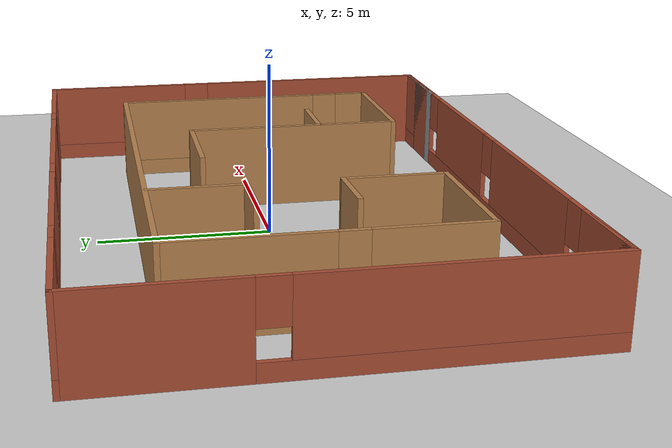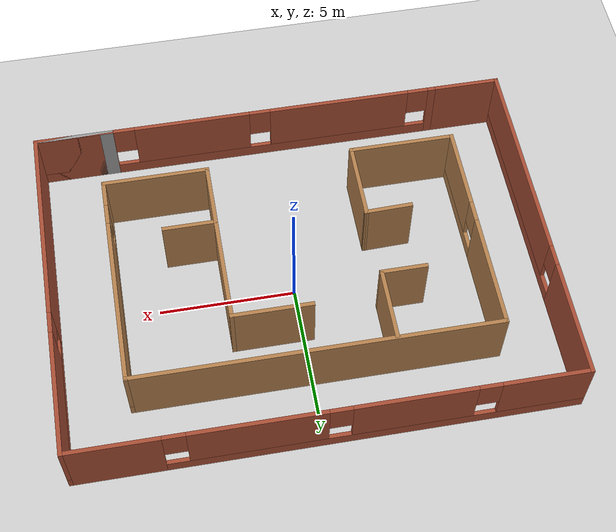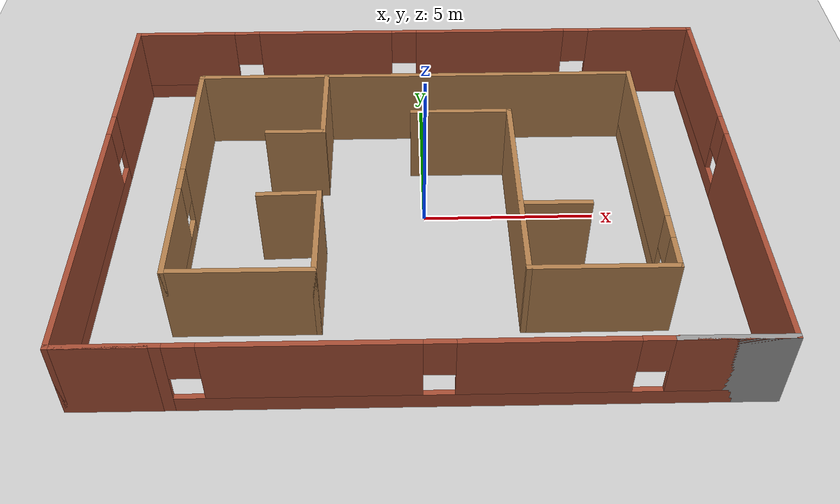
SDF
<sdf version="1.6">
 <world name="default">
  <light name="sun" type="directional">
   <pose>0 0 10 0 -0 0</pose>
   <diffuse>0.8 0.8 0.8 1</diffuse>
   <specular>0.1 0.1 0.1 1</specular>
   <attenuation>
    <range>1000</range>
    <constant>0.9</constant>
    <linear>0.01</linear>
    <quadratic>0.001</quadratic>
   </attenuation>
   <direction>-0.5 0.5 -1</direction>
  </light>
  <model name="ground_plane">
   <static>1</static>
   <link name="link">
    <collision name="collision">
     <geometry><plane><normal>0 0 1</normal><size>100 100</size></plane></geometry>
     <surface><friction><ode><mu>100</mu><mu2>50</mu2></ode></friction></surface>
    </collision>
    <visual name="visual">
     <cast_shadows>0</cast_shadows>
     <geometry><plane><normal>0 0 1</normal><size>100 100</size></plane></geometry>
     <material>
      <script><uri>file://media/materials/scripts/gazebo.material</uri><name>Gazebo/Grey</name></script>
     </material>
    </visual>
   </link>
  </model>
  <gravity>0 0 -9.8</gravity>
  <magnetic_field>6e-06 2.3e-05 -4.2e-05</magnetic_field>
  <atmosphere type="adiabatic"/>
  <physics name="default_physics" default="0" type="ode">
   <max_step_size>0.001</max_step_size>
   <real_time_factor>1</real_time_factor>
   <real_time_update_rate>1000</real_time_update_rate>
  </physics>
  <scene><ambient>0.4 0.4 0.4 1</ambient><background>0.7 0.7 0.7 1</background><shadows>1</shadows></scene>
  <spherical_coordinates>
   <surface_model>EARTH_WGS84</surface_model>
   <latitude_deg>0</latitude_deg>
   <longitude_deg>0</longitude_deg>
   <elevation>0</elevation>
   <heading_deg>0</heading_deg>
  </spherical_coordinates>
  <model name="testworld1">
   <pose>-0.193786 -0.295469 0 0 -0 0</pose>
   <link name="Wall_23">
    <collision name="Wall_23_Collision">
     <geometry><box><size>3 0.15 2.5</size></box></geometry>
     <pose>0 0 1.25 0 -0 0</pose>
    </collision>
    <visual name="Wall_23_Visual">
     <pose>0 0 1.25 0 -0 0</pose>
     <geometry><box><size>3 0.15 2.5</size></box></geometry>
     <material>
      <script><uri>file://media/materials/scripts/gazebo.material</uri><name>Gazebo/Grey</name></script>
      <ambient>1 1 1 1</ambient>
     </material>
    </visual>
    <pose>7.5 -6.425 0 0 -0 3.14159</pose>
   </link>
   <link name="Wall_27">
    <collision name="Wall_27_Collision">
     <geometry><box><size>2.5 0.15 2.5</size></box></geometry>
     <pose>0 0 1.25 0 -0 0</pose>
    </collision>
    <visual name="Wall_27_Visual">
     <pose>0 0 1.25 0 -0 0</pose>
     <geometry><box><size>2.5 0.15 2.5</size></box></geometry>
     <material>
      <script><uri>file://media/materials/scripts/gazebo.material</uri><name>Gazebo/Bricks</name></script>
      <ambient>1 1 1 1</ambient>
     </material>
    </visual>
    <pose>-7.75 -6.425 0 0 -0 0</pose>
   </link>
   <link name="Wall_30">
    <collision name="Wall_30_Collision">
     <geometry><box><size>2.5 0.15 2.5</size></box></geometry>
     <pose>0 0 1.25 0 -0 0</pose>
    </collision>
    <visual name="Wall_30_Visual">
     <pose>0 0 1.25 0 -0 0</pose>
     <geometry><box><size>2.5 0.15 2.5</size></box></geometry>
     <material>
      <script><uri>file://media/materials/scripts/gazebo.material</uri><name>Gazebo/Bricks</name></script>
      <ambient>1 1 1 1</ambient>
     </material>
    </visual>
    <pose>7.75 -6.425 0 0 -0 3.14159</pose>
   </link>
   <link name="Wall_4">
    <pose>0 -6.425 0 0 -0 0</pose>
    <visual name="Wall_4_Visual_0">
     <pose>-7.60123 0 1.25 0 -0 0</pose>
     <geometry><box><size>2.79754 0.15 2.5</size></box></geometry>
     <material>
      <script><uri>file://media/materials/scripts/gazebo.material</uri><name>Gazebo/Bricks</name></script>
      <ambient>1 1 1 1</ambient>
     </material>
    </visual>
    <collision name="Wall_4_Collision_0">
     <geometry><box><size>2.79754 0.15 2.5</size></box></geometry>
     <pose>-7.60123 0 1.25 0 -0 0</pose>
    </collision>
    <visual name="Wall_4_Visual_1">
     <pose>1.39877 0 0.25 0 -0 0</pose>
     <geometry><box><size>15.2025 0.15 0.5</size></box></geometry>
     <material>
      <script><uri>file://media/materials/scripts/gazebo.material</uri><name>Gazebo/Bricks</name></script>
      <ambient>1 1 1 1</ambient>
     </material>
    </visual>
    <collision name="Wall_4_Collision_1">
     <geometry><box><size>15.2025 0.15 0.5</size></box></geometry>
     <pose>1.39877 0 0.25 0 -0 0</pose>
    </collision>
    <visual name="Wall_4_Visual_2">
     <pose>-2.70673 0 1.5 0 -0 0</pose>
     <geometry><box><size>5.39146 0.15 2</size></box></geometry>
     <material>
      <script><uri>file://media/materials/scripts/gazebo.material</uri><name>Gazebo/Bricks</name></script>
      <ambient>1 1 1 1</ambient>
     </material>
    </visual>
    <collision name="Wall_4_Collision_2">
     <geometry><box><size>5.39146 0.15 2</size></box></geometry>
     <pose>-2.70673 0 1.5 0 -0 0</pose>
    </collision>
    <visual name="Wall_4_Visual_3">
     <pose>2.99223 0 1.5 0 -0 0</pose>
     <geometry><box><size>4.40646 0.15 2</size></box></geometry>
     <material>
      <script><uri>file://media/materials/scripts/gazebo.material</uri><name>Gazebo/Bricks</name></script>
      <ambient>1 1 1 1</ambient>
     </material>
    </visual>
    <collision name="Wall_4_Collision_3">
     <geometry><box><size>4.40646 0.15 2</size></box></geometry>
     <pose>2.99223 0 1.5 0 -0 0</pose>
    </collision>
    <visual name="Wall_4_Visual_4">
     <pose>7.49773 0 1.5 0 -0 0</pose>
     <geometry><box><size>3.00454 0.15 2</size></box></geometry>
     <material>
      <script><uri>file://media/materials/scripts/gazebo.material</uri><name>Gazebo/Bricks</name></script>
      <ambient>1 1 1 1</ambient>
     </material>
    </visual>
    <collision name="Wall_4_Collision_4">
     <geometry><box><size>3.00454 0.15 2</size></box></geometry>
     <pose>7.49773 0 1.5 0 -0 0</pose>
    </collision>
    <visual name="Wall_4_Visual_5">
     <pose>-5.80246 0 1.9 0 -0 0</pose>
     <geometry><box><size>0.8 0.15 1.2</size></box></geometry>
     <material>
      <script><uri>file://media/materials/scripts/gazebo.material</uri><name>Gazebo/Bricks</name></script>
      <ambient>1 1 1 1</ambient>
     </material>
    </visual>
    <collision name="Wall_4_Collision_5">
     <geometry><box><size>0.8 0.15 1.2</size></box></geometry>
     <pose>-5.80246 0 1.9 0 -0 0</pose>
    </collision>
    <visual name="Wall_4_Visual_6">
     <pose>0.389002 0 1.9 0 -0 0</pose>
     <geometry><box><size>0.8 0.15 1.2</size></box></geometry>
     <material>
      <script><uri>file://media/materials/scripts/gazebo.material</uri><name>Gazebo/Bricks</name></script>
      <ambient>1 1 1 1</ambient>
     </material>
    </visual>
    <collision name="Wall_4_Collision_6">
     <geometry><box><size>0.8 0.15 1.2</size></box></geometry>
     <pose>0.389002 0 1.9 0 -0 0</pose>
    </collision>
    <visual name="Wall_4_Visual_7">
     <pose>5.59546 0 1.9 0 -0 0</pose>
     <geometry><box><size>0.8 0.15 1.2</size></box></geometry>
     <material>
      <script><uri>file://media/materials/scripts/gazebo.material</uri><name>Gazebo/Bricks</name></script>
      <ambient>1 1 1 1</ambient>
     </material>
    </visual>
    <collision name="Wall_4_Collision_7">
     <geometry><box><size>0.8 0.15 1.2</size></box></geometry>
     <pose>5.59546 0 1.9 0 -0 0</pose>
    </collision>
   </link>
   <link name="Wall_43">
    <collision name="Wall_43_Collision">
     <geometry><box><size>13.3 0.15 2.5</size></box></geometry>
     <pose>0 0 1.25 0 -0 0</pose>
    </collision>
    <visual name="Wall_43_Visual">
     <pose>0 0 1.25 0 -0 0</pose>
     <geometry><box><size>13.3 0.15 2.5</size></box></geometry>
     <material>
      <script><uri>file://media/materials/scripts/gazebo.material</uri><name>Gazebo/Wood</name></script>
      <ambient>1 1 1 1</ambient>
     </material>
    </visual>
    <pose>0 4.075 0 0 -0 3.14159</pose>
   </link>
   <link name="Wall_44">
    <pose>-6.575 0.01759 0 0 0 -1.5708</pose>
    <visual name="Wall_44_Visual_0">
     <pose>-1.97827 0 1.25 0 -0 0</pose>
     <geometry><box><size>4.30828 0.15 2.5</size></box></geometry>
     <material>
      <script><uri>file://media/materials/scripts/gazebo.material</uri><name>Gazebo/Wood</name></script>
      <ambient>1 1 1 1</ambient>
     </material>
    </visual>
    <collision name="Wall_44_Collision_0">
     <geometry><box><size>4.30828 0.15 2.5</size></box></geometry>
     <pose>-1.97827 0 1.25 0 -0 0</pose>
    </collision>
    <visual name="Wall_44_Visual_1">
     <pose>2.15414 0 0.25 0 -0 0</pose>
     <geometry><box><size>3.95654 0.15 0.5</size></box></geometry>
     <material>
      <script><uri>file://media/materials/scripts/gazebo.material</uri><name>Gazebo/Wood</name></script>
      <ambient>1 1 1 1</ambient>
     </material>
    </visual>
    <collision name="Wall_44_Collision_1">
     <geometry><box><size>3.95654 0.15 0.5</size></box></geometry>
     <pose>2.15414 0 0.25 0 -0 0</pose>
    </collision>
    <visual name="Wall_44_Visual_2">
     <pose>2.55414 0 1.5 0 -0 0</pose>
     <geometry><box><size>3.15654 0.15 2</size></box></geometry>
     <material>
      <script><uri>file://media/materials/scripts/gazebo.material</uri><name>Gazebo/Wood</name></script>
      <ambient>1 1 1 1</ambient>
     </material>
    </visual>
    <collision name="Wall_44_Collision_2">
     <geometry><box><size>3.15654 0.15 2</size></box></geometry>
     <pose>2.55414 0 1.5 0 -0 0</pose>
    </collision>
    <visual name="Wall_44_Visual_3">
     <pose>0.575871 0 1.9 0 -0 0</pose>
     <geometry><box><size>0.8 0.15 1.2</size></box></geometry>
     <material>
      <script><uri>file://media/materials/scripts/gazebo.material</uri><name>Gazebo/Wood</name></script>
      <ambient>1 1 1 1</ambient>
     </material>
    </visual>
    <collision name="Wall_44_Collision_3">
     <geometry><box><size>0.8 0.15 1.2</size></box></geometry>
     <pose>0.575871 0 1.9 0 -0 0</pose>
    </collision>
   </link>
   <link name="Wall_46">
    <pose>6.575 0 0 0 -0 1.5708</pose>
    <visual name="Wall_46_Visual_0">
     <pose>-3.61815 0 1.25 0 -0 0</pose>
     <geometry><box><size>1.0637 0.15 2.5</size></box></geometry>
     <material>
      <script><uri>file://media/materials/scripts/gazebo.material</uri><name>Gazebo/Wood</name></script>
      <ambient>1 1 1 1</ambient>
     </material>
    </visual>
    <collision name="Wall_46_Collision_0">
     <geometry><box><size>1.0637 0.15 2.5</size></box></geometry>
     <pose>-3.61815 0 1.25 0 -0 0</pose>
    </collision>
    <visual name="Wall_46_Visual_1">
     <pose>0.531851 0 0.25 0 -0 0</pose>
     <geometry><box><size>7.2363 0.15 0.5</size></box></geometry>
     <material>
      <script><uri>file://media/materials/scripts/gazebo.material</uri><name>Gazebo/Wood</name></script>
      <ambient>1 1 1 1</ambient>
     </material>
    </visual>
    <collision name="Wall_46_Collision_1">
     <geometry><box><size>7.2363 0.15 0.5</size></box></geometry>
     <pose>0.531851 0 0.25 0 -0 0</pose>
    </collision>
    <visual name="Wall_46_Visual_2">
     <pose>0.931851 0 1.5 0 -0 0</pose>
     <geometry><box><size>6.4363 0.15 2</size></box></geometry>
     <material>
      <script><uri>file://media/materials/scripts/gazebo.material</uri><name>Gazebo/Wood</name></script>
      <ambient>1 1 1 1</ambient>
     </material>
    </visual>
    <collision name="Wall_46_Collision_2">
     <geometry><box><size>6.4363 0.15 2</size></box></geometry>
     <pose>0.931851 0 1.5 0 -0 0</pose>
    </collision>
    <visual name="Wall_46_Visual_3">
     <pose>-2.6863 0 1.9 0 -0 0</pose>
     <geometry><box><size>0.8 0.15 1.2</size></box></geometry>
     <material>
      <script><uri>file://media/materials/scripts/gazebo.material</uri><name>Gazebo/Wood</name></script>
      <ambient>1 1 1 1</ambient>
     </material>
    </visual>
    <collision name="Wall_46_Collision_3">
     <geometry><box><size>0.8 0.15 1.2</size></box></geometry>
     <pose>-2.6863 0 1.9 0 -0 0</pose>
    </collision>
   </link>
   <link name="Wall_5">
    <pose>8.925 0 0 0 -0 1.5708</pose>
    <visual name="Wall_5_Visual_0">
     <pose>-2.71833 0 1.25 0 -0 0</pose>
     <geometry><box><size>7.56333 0.15 2.5</size></box></geometry>
     <material>
      <script><uri>file://media/materials/scripts/gazebo.material</uri><name>Gazebo/Bricks</name></script>
      <ambient>1 1 1 1</ambient>
     </material>
    </visual>
    <collision name="Wall_5_Collision_0">
     <geometry><box><size>7.56333 0.15 2.5</size></box></geometry>
     <pose>-2.71833 0 1.25 0 -0 0</pose>
    </collision>
    <visual name="Wall_5_Visual_1">
     <pose>3.78167 0 0.25 0 -0 0</pose>
     <geometry><box><size>5.43667 0.15 0.5</size></box></geometry>
     <material>
      <script><uri>file://media/materials/scripts/gazebo.material</uri><name>Gazebo/Bricks</name></script>
      <ambient>1 1 1 1</ambient>
     </material>
    </visual>
    <collision name="Wall_5_Collision_1">
     <geometry><box><size>5.43667 0.15 0.5</size></box></geometry>
     <pose>3.78167 0 0.25 0 -0 0</pose>
    </collision>
    <visual name="Wall_5_Visual_2">
     <pose>4.18167 0 1.5 0 -0 0</pose>
     <geometry><box><size>4.63667 0.15 2</size></box></geometry>
     <material>
      <script><uri>file://media/materials/scripts/gazebo.material</uri><name>Gazebo/Bricks</name></script>
      <ambient>1 1 1 1</ambient>
     </material>
    </visual>
    <collision name="Wall_5_Collision_2">
     <geometry><box><size>4.63667 0.15 2</size></box></geometry>
     <pose>4.18167 0 1.5 0 -0 0</pose>
    </collision>
    <visual name="Wall_5_Visual_3">
     <pose>1.46333 0 1.9 0 -0 0</pose>
     <geometry><box><size>0.8 0.15 1.2</size></box></geometry>
     <material>
      <script><uri>file://media/materials/scripts/gazebo.material</uri><name>Gazebo/Bricks</name></script>
      <ambient>1 1 1 1</ambient>
     </material>
    </visual>
    <collision name="Wall_5_Collision_3">
     <geometry><box><size>0.8 0.15 1.2</size></box></geometry>
     <pose>1.46333 0 1.9 0 -0 0</pose>
    </collision>
   </link>
   <link name="Wall_51">
    <collision name="Wall_51_Collision">
     <geometry><box><size>4 0.15 2.5</size></box></geometry>
     <pose>0 0 1.25 0 -0 0</pose>
    </collision>
    <visual name="Wall_51_Visual">
     <pose>0 0 1.25 0 -0 0</pose>
     <geometry><box><size>4 0.15 2.5</size></box></geometry>
     <material>
      <script><uri>file://media/materials/scripts/gazebo.material</uri><name>Gazebo/Wood</name></script>
      <ambient>1 1 1 1</ambient>
     </material>
    </visual>
    <pose>-4.65 -4.03982 0 0 -0 0</pose>
   </link>
   <link name="Wall_53">
    <collision name="Wall_53_Collision">
     <geometry><box><size>4 0.15 2.5</size></box></geometry>
     <pose>0 0 1.25 0 -0 0</pose>
    </collision>
    <visual name="Wall_53_Visual">
     <pose>0 0 1.25 0 -0 0</pose>
     <geometry><box><size>4 0.15 2.5</size></box></geometry>
     <material>
      <script><uri>file://media/materials/scripts/gazebo.material</uri><name>Gazebo/Wood</name></script>
      <ambient>1 1 1 1</ambient>
     </material>
    </visual>
    <pose>4.65 -4.075 0 0 -0 3.14159</pose>
   </link>
   <link name="Wall_56">
    <collision name="Wall_56_Collision">
     <geometry><box><size>6.5 0.15 2.5</size></box></geometry>
     <pose>0 0 1.25 0 -0 0</pose>
    </collision>
    <visual name="Wall_56_Visual">
     <pose>0 0 1.25 0 -0 0</pose>
     <geometry><box><size>6.5 0.15 2.5</size></box></geometry>
     <material>
      <script><uri>file://media/materials/scripts/gazebo.material</uri><name>Gazebo/Wood</name></script>
      <ambient>1 1 1 1</ambient>
     </material>
    </visual>
    <pose>2.725 -0.9 0 0 -0 1.5708</pose>
   </link>
   <link name="Wall_58">
    <collision name="Wall_58_Collision">
     <geometry><box><size>2 0.15 2.5</size></box></geometry>
     <pose>0 0 1.25 0 -0 0</pose>
    </collision>
    <visual name="Wall_58_Visual">
     <pose>0 0 1.25 0 -0 0</pose>
     <geometry><box><size>2 0.15 2.5</size></box></geometry>
     <material>
      <script><uri>file://media/materials/scripts/gazebo.material</uri><name>Gazebo/Wood</name></script>
      <ambient>1 1 1 1</ambient>
     </material>
    </visual>
    <pose>3.68915 -1.70288 0 0 -0 0</pose>
   </link>
   <link name="Wall_6">
    <pose>0 6.425 0 0 -0 3.14159</pose>
    <visual name="Wall_6_Visual_0">
     <pose>-7.31833 0 1.25 0 -0 0</pose>
     <geometry><box><size>3.36334 0.15 2.5</size></box></geometry>
     <material>
      <script><uri>file://media/materials/scripts/gazebo.material</uri><name>Gazebo/Bricks</name></script>
      <ambient>1 1 1 1</ambient>
     </material>
    </visual>
    <collision name="Wall_6_Collision_0">
     <geometry><box><size>3.36334 0.15 2.5</size></box></geometry>
     <pose>-7.31833 0 1.25 0 -0 0</pose>
    </collision>
    <visual name="Wall_6_Visual_1">
     <pose>1.68167 0 0.25 0 -0 0</pose>
     <geometry><box><size>14.6367 0.15 0.5</size></box></geometry>
     <material>
      <script><uri>file://media/materials/scripts/gazebo.material</uri><name>Gazebo/Bricks</name></script>
      <ambient>1 1 1 1</ambient>
     </material>
    </visual>
    <collision name="Wall_6_Collision_1">
     <geometry><box><size>14.6367 0.15 0.5</size></box></geometry>
     <pose>1.68167 0 0.25 0 -0 0</pose>
    </collision>
    <visual name="Wall_6_Visual_2">
     <pose>-2.44364 0 1.5 0 -0 0</pose>
     <geometry><box><size>4.78604 0.15 2</size></box></geometry>
     <material>
      <script><uri>file://media/materials/scripts/gazebo.material</uri><name>Gazebo/Bricks</name></script>
      <ambient>1 1 1 1</ambient>
     </material>
    </visual>
    <collision name="Wall_6_Collision_2">
     <geometry><box><size>4.78604 0.15 2</size></box></geometry>
     <pose>-2.44364 0 1.5 0 -0 0</pose>
    </collision>
    <visual name="Wall_6_Visual_3">
     <pose>2.8897 0 1.5 0 -0 0</pose>
     <geometry><box><size>4.28064 0.15 2</size></box></geometry>
     <material>
      <script><uri>file://media/materials/scripts/gazebo.material</uri><name>Gazebo/Bricks</name></script>
      <ambient>1 1 1 1</ambient>
     </material>
    </visual>
    <collision name="Wall_6_Collision_3">
     <geometry><box><size>4.28064 0.15 2</size></box></geometry>
     <pose>2.8897 0 1.5 0 -0 0</pose>
    </collision>
    <visual name="Wall_6_Visual_4">
     <pose>7.41501 0 1.5 0 -0 0</pose>
     <geometry><box><size>3.16999 0.15 2</size></box></geometry>
     <material>
      <script><uri>file://media/materials/scripts/gazebo.material</uri><name>Gazebo/Bricks</name></script>
      <ambient>1 1 1 1</ambient>
     </material>
    </visual>
    <collision name="Wall_6_Collision_4">
     <geometry><box><size>3.16999 0.15 2</size></box></geometry>
     <pose>7.41501 0 1.5 0 -0 0</pose>
    </collision>
    <visual name="Wall_6_Visual_5">
     <pose>-5.23667 0 1.9 0 -0 0</pose>
     <geometry><box><size>0.8 0.15 1.2</size></box></geometry>
     <material>
      <script><uri>file://media/materials/scripts/gazebo.material</uri><name>Gazebo/Bricks</name></script>
      <ambient>1 1 1 1</ambient>
     </material>
    </visual>
    <collision name="Wall_6_Collision_5">
     <geometry><box><size>0.8 0.15 1.2</size></box></geometry>
     <pose>-5.23667 0 1.9 0 -0 0</pose>
    </collision>
    <visual name="Wall_6_Visual_6">
     <pose>0.349377 0 1.9 0 -0 0</pose>
     <geometry><box><size>0.8 0.15 1.2</size></box></geometry>
     <material>
      <script><uri>file://media/materials/scripts/gazebo.material</uri><name>Gazebo/Bricks</name></script>
      <ambient>1 1 1 1</ambient>
     </material>
    </visual>
    <collision name="Wall_6_Collision_6">
     <geometry><box><size>0.8 0.15 1.2</size></box></geometry>
     <pose>0.349377 0 1.9 0 -0 0</pose>
    </collision>
    <visual name="Wall_6_Visual_7">
     <pose>5.43002 0 1.9 0 -0 0</pose>
     <geometry><box><size>0.8 0.15 1.2</size></box></geometry>
     <material>
      <script><uri>file://media/materials/scripts/gazebo.material</uri><name>Gazebo/Bricks</name></script>
      <ambient>1 1 1 1</ambient>
     </material>
    </visual>
    <collision name="Wall_6_Collision_7">
     <geometry><box><size>0.8 0.15 1.2</size></box></geometry>
     <pose>5.43002 0 1.9 0 -0 0</pose>
    </collision>
   </link>
   <link name="Wall_61">
    <collision name="Wall_61_Collision">
     <geometry><box><size>3 0.15 2.5</size></box></geometry>
     <pose>0 0 1.25 0 -0 0</pose>
    </collision>
    <visual name="Wall_61_Visual">
     <pose>0 0 1.25 0 -0 0</pose>
     <geometry><box><size>3 0.15 2.5</size></box></geometry>
     <material>
      <script><uri>file://media/materials/scripts/gazebo.material</uri><name>Gazebo/Wood</name></script>
      <ambient>1 1 1 1</ambient>
     </material>
    </visual>
    <pose>-2.725 -2.61482 0 0 -0 1.5708</pose>
   </link>
   <link name="Wall_7">
    <pose>-8.925 0 0 0 0 -1.5708</pose>
    <visual name="Wall_7_Visual_0">
     <pose>-4.34112 0 1.25 0 -0 0</pose>
     <geometry><box><size>4.31776 0.15 2.5</size></box></geometry>
     <material>
      <script><uri>file://media/materials/scripts/gazebo.material</uri><name>Gazebo/Bricks</name></script>
      <ambient>1 1 1 1</ambient>
     </material>
    </visual>
    <collision name="Wall_7_Collision_0">
     <geometry><box><size>4.31776 0.15 2.5</size></box></geometry>
     <pose>-4.34112 0 1.25 0 -0 0</pose>
    </collision>
    <visual name="Wall_7_Visual_1">
     <pose>2.15888 0 0.25 0 -0 0</pose>
     <geometry><box><size>8.68224 0.15 0.5</size></box></geometry>
     <material>
      <script><uri>file://media/materials/scripts/gazebo.material</uri><name>Gazebo/Bricks</name></script>
      <ambient>1 1 1 1</ambient>
     </material>
    </visual>
    <collision name="Wall_7_Collision_1">
     <geometry><box><size>8.68224 0.15 0.5</size></box></geometry>
     <pose>2.15888 0 0.25 0 -0 0</pose>
    </collision>
    <visual name="Wall_7_Visual_2">
     <pose>2.55888 0 1.5 0 -0 0</pose>
     <geometry><box><size>7.88224 0.15 2</size></box></geometry>
     <material>
      <script><uri>file://media/materials/scripts/gazebo.material</uri><name>Gazebo/Bricks</name></script>
      <ambient>1 1 1 1</ambient>
     </material>
    </visual>
    <collision name="Wall_7_Collision_2">
     <geometry><box><size>7.88224 0.15 2</size></box></geometry>
     <pose>2.55888 0 1.5 0 -0 0</pose>
    </collision>
    <visual name="Wall_7_Visual_3">
     <pose>-1.78224 0 1.9 0 -0 0</pose>
     <geometry><box><size>0.8 0.15 1.2</size></box></geometry>
     <material>
      <script><uri>file://media/materials/scripts/gazebo.material</uri><name>Gazebo/Bricks</name></script>
      <ambient>1 1 1 1</ambient>
     </material>
    </visual>
    <collision name="Wall_7_Collision_3">
     <geometry><box><size>0.8 0.15 1.2</size></box></geometry>
     <pose>-1.78224 0 1.9 0 -0 0</pose>
    </collision>
   </link>
   <link name="Wall_73">
    <collision name="Wall_73_Collision">
     <geometry><box><size>3 0.15 2.5</size></box></geometry>
     <pose>0 0 1.25 0 -0 0</pose>
    </collision>
    <visual name="Wall_73_Visual">
     <pose>0 0 1.25 0 -0 0</pose>
     <geometry><box><size>3 0.15 2.5</size></box></geometry>
     <material>
      <script><uri>file://media/materials/scripts/gazebo.material</uri><name>Gazebo/Wood</name></script>
      <ambient>1 1 1 1</ambient>
     </material>
    </visual>
    <pose>1.3 2.275 0 0 -0 3.14159</pose>
   </link>
   <link name="Wall_77">
    <collision name="Wall_77_Collision">
     <geometry><box><size>2.75 0.15 2.5</size></box></geometry>
     <pose>0 0 1.25 0 -0 0</pose>
    </collision>
    <visual name="Wall_77_Visual">
     <pose>0 0 1.25 0 -0 0</pose>
     <geometry><box><size>2.75 0.15 2.5</size></box></geometry>
     <material>
      <script><uri>file://media/materials/scripts/gazebo.material</uri><name>Gazebo/Wood</name></script>
      <ambient>1 1 1 1</ambient>
     </material>
    </visual>
    <pose>-2.74721 2.71574 0 0 0 -1.5708</pose>
   </link>
   <link name="Wall_78">
    <collision name="Wall_78_Collision">
     <geometry><box><size>1.75 0.15 2.5</size></box></geometry>
     <pose>0 0 1.25 0 -0 0</pose>
    </collision>
    <visual name="Wall_78_Visual">
     <pose>0 0 1.25 0 -0 0</pose>
     <geometry><box><size>1.75 0.15 2.5</size></box></geometry>
     <material>
      <script><uri>file://media/materials/scripts/gazebo.material</uri><name>Gazebo/Wood</name></script>
      <ambient>1 1 1 1</ambient>
     </material>
    </visual>
    <pose>-3.54721 1.41574 0 0 -0 3.14159</pose>
   </link>
   <link name="Wall_83">
    <collision name="Wall_83_Collision">
     <geometry><box><size>1.802 0.15 2.5</size></box></geometry>
     <pose>0 0 1.25 0 -0 0</pose>
    </collision>
    <visual name="Wall_83_Visual">
     <pose>0 0 1.25 0 -0 0</pose>
     <geometry><box><size>1.802 0.15 2.5</size></box></geometry>
     <material>
      <script><uri>file://media/materials/scripts/gazebo.material</uri><name>Gazebo/Wood</name></script>
      <ambient>1 1 1 1</ambient>
     </material>
    </visual>
    <pose>-3.55071 -1.21186 0 0 -0 0.026684</pose>
   </link>
   <static>1</static>
  </model>
 </world>
</sdf>
